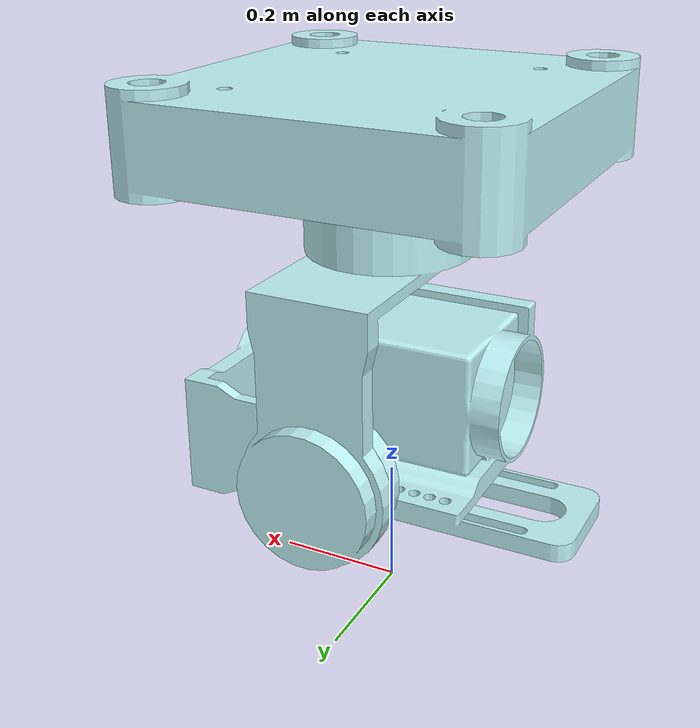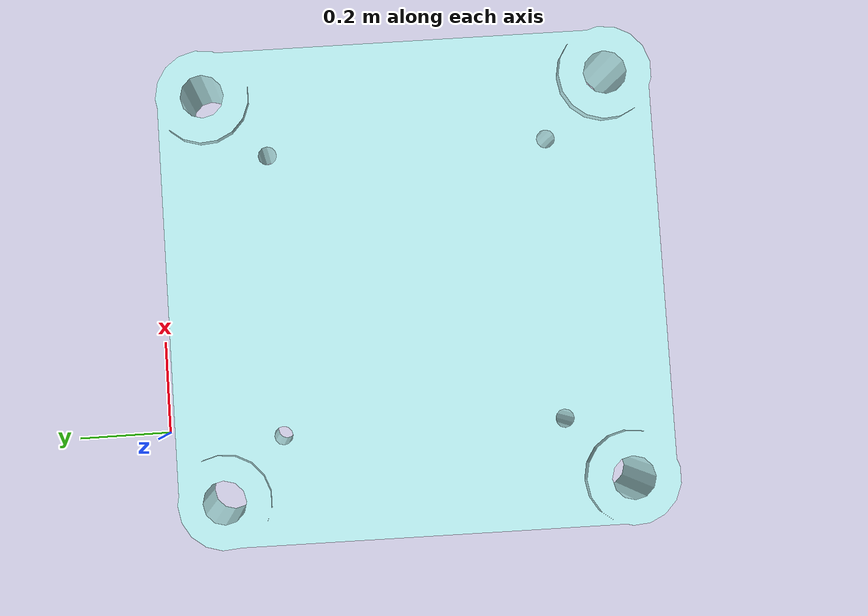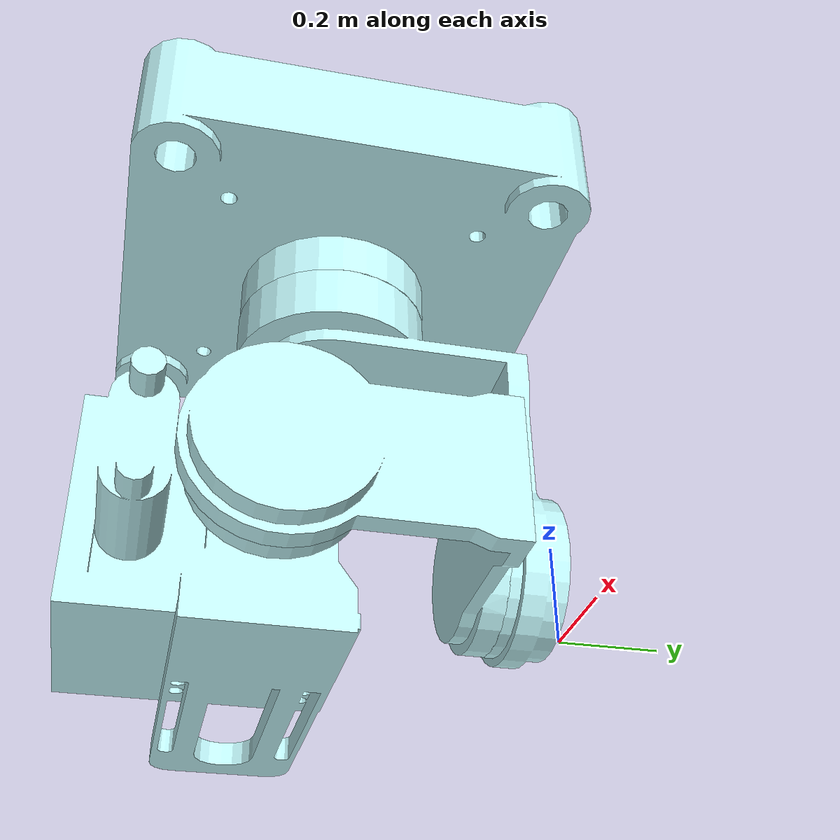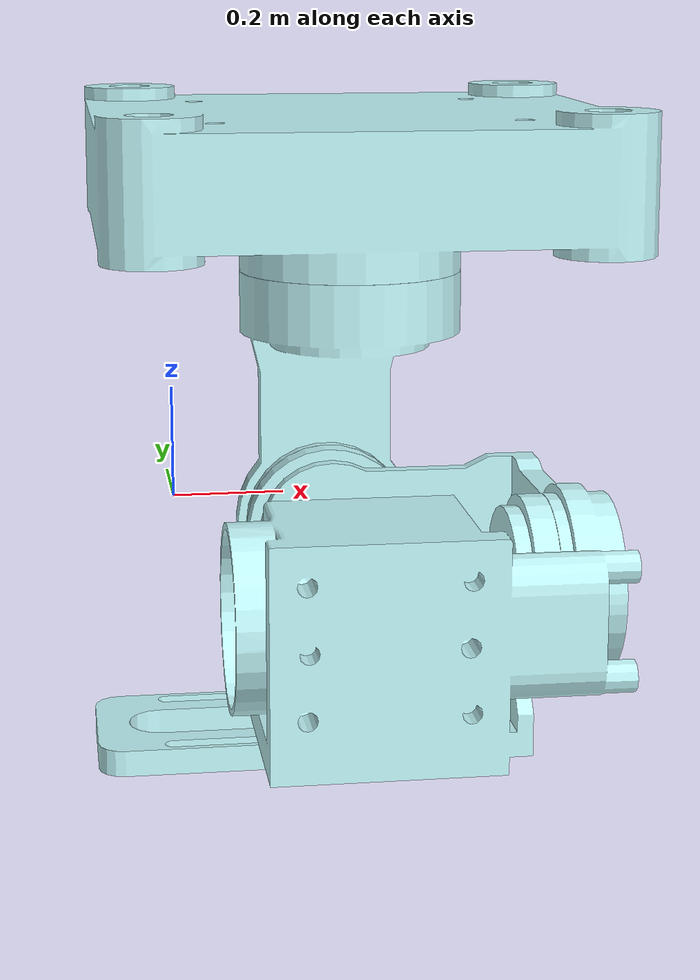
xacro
<?xml version="1.0"?>
<robot xmlns:xacro="http://www.ros.org/wiki/xacro" name="test">

   <link name="base_footprint_link"/>

    <link name="base_link">
        <inertial>
            <origin xyz="0.0 0.0 0.0" rpy="0.0 0.0 0.0"/>
            <mass value="0.0"/>
            <inertia ixx="0.0" ixy="0.0" ixz="0.0" iyy="0.0" iyz="0.0" izz="0.0"/>
        </inertial>
        <visual name="">
            <origin xyz="0.0 0 0.0" rpy="0.0 0.0 0.0"/>
            <geometry>
                <mesh filename="package://gimbal_urdf/meshes/base_link2.STL" scale="10 10 10"/>
            </geometry>
            <material name="">
                <color rgba="0.757 0.969 0.98 1"/>
                <texture filename=""/>
            </material>
        </visual>
        <collision>
            <origin xyz="0.0 0.0 0.0" rpy="0.0 0.0 0.0"/>
            <geometry>
                <mesh filename="package://gimbal_urdf/meshes/base_link2.STL" scale="10 10 10"/>
            </geometry>
        </collision>
    </link>

    <joint name="base_joint" type="fixed">
        <origin xyz="0.0 0.0 0" rpy="-0 0 -0.0"/>
        <parent link="base_footprint_link"/>
        <child link="base_link"/>
        <axis xyz="0.0 1 0.0"/>
    </joint>

    <link name="1st_link">
        <inertial>
            <origin xyz="0.0 0.0 0.0" rpy="0.0 0.0 0.0"/>
            <mass value="0.0"/>
            <inertia ixx="0.0" ixy="0.0" ixz="0.0" iyy="0.0" iyz="0.0" izz="0.0"/>
        </inertial>
        <visual name="">
            <origin xyz="0 0 0.0 " rpy="0.0 0.0 0.0"/>
            <geometry>
                <mesh filename="package://gimbal_urdf/meshes/1st_link2.STL" scale="10 10 10"/>
            </geometry>
            <material name="">
                <color rgba="0.757 0.969 0.98 1"/>
                <texture filename=""/>
            </material>
        </visual>
        <collision>
            <origin xyz="0.0 0.0 0.0" rpy="0.0 0.0 0.0"/>
            <geometry>
                <mesh filename="package://gimbal_urdf/meshes/1st_link2.STL" scale="10 10 10"/>
            </geometry>
        </collision>
    </link>

    <joint name="1st_to_base" type="revolute">
        <origin xyz="0.253 -0.5045 0.482" rpy="1.57079632 0 -1.57079632"/>
        <parent link="base_link"/>
        <child link="1st_link"/>
        <axis xyz="0.0 1 0.0"/>
        <limit lower="-1.57" upper="1.57" effort="0" velocity="0" />
    </joint>

    <link name="2nd_link">
        <inertial>
            <origin xyz="0.0 0.0 0.0" rpy="0.0 0.0 0.0"/>
            <mass value="0.0"/>
            <inertia ixx="0.0" ixy="0.0" ixz="0.0" iyy="0.0" iyz="0.0" izz="0.0"/>
        </inertial>
        <visual name="">
            <origin xyz="0.0 0.0 0.0" rpy="0.0 0.0 0.0"/>
            <geometry>
                <mesh filename="package://gimbal_urdf/meshes/2nd_link2.STL" scale="10 10 10"/>
            </geometry>
            <material name="">
                <color rgba="0.757 0.969 0.98 1"/>
                <texture filename=""/>
            </material>
        </visual>
        <collision>
            <origin xyz="0.0 0.0 0.0" rpy="0.0 0.0 0.0"/>
            <geometry>
                <mesh filename="package://gimbal_urdf/meshes/2nd_link2.STL" scale="10 10 10"/>
            </geometry>
        </collision>
    </link>

    <joint name="2nd_to_1st" type="revolute">
        <origin xyz="-0.283 -0.486 0" rpy="0 0 0"/>
        <parent link="1st_link"/>
        <child link="2nd_link"/>
        <axis xyz="1 0 0"/>
        <limit lower="-0.57" upper="0.57" effort="0" velocity="0" />
    </joint>

    <link name="3rd_link">
        <inertial>
            <origin xyz="0.0 0.0 0.0" rpy="0.0 0.0 0.0"/>
            <mass value="0.0"/>
            <inertia ixx="0.0" ixy="0.0" ixz="0.0" iyy="0.0" iyz="0.0" izz="0.0"/>
        </inertial>
        <visual name="">
            <origin xyz="0.0 0.0 0.0" rpy="0.0 0.0 0.0"/>
            <geometry>
                <mesh filename="package://gimbal_urdf/meshes/3rd_link2.STL" scale="10 10 10"/>
            </geometry>
            <material name="">
                <color rgba="0.757 0.969 0.98 1"/>
                <texture filename=""/>
            </material>
        </visual>
        <collision>
            <origin xyz="0.0 0.0 0.0" rpy="0.0 0.0 0.0"/>
            <geometry>
                <mesh filename="package://gimbal_urdf/meshes/3rd_link2.STL" scale="10 10 10"/>
            </geometry>
        </collision>
    </link>

    <joint name="3rd_to_2nd" type="revolute">
        <origin xyz="0.4 0.0035 -0.2915" rpy="0 -1.57079632 0"/>
        <parent link="2nd_link"/>
        <child link="3rd_link"/>
        <axis xyz="1 0 0"/>
        <limit lower="-1.57" upper="0.69" effort="0" velocity="0" />
    </joint>
</robot>
